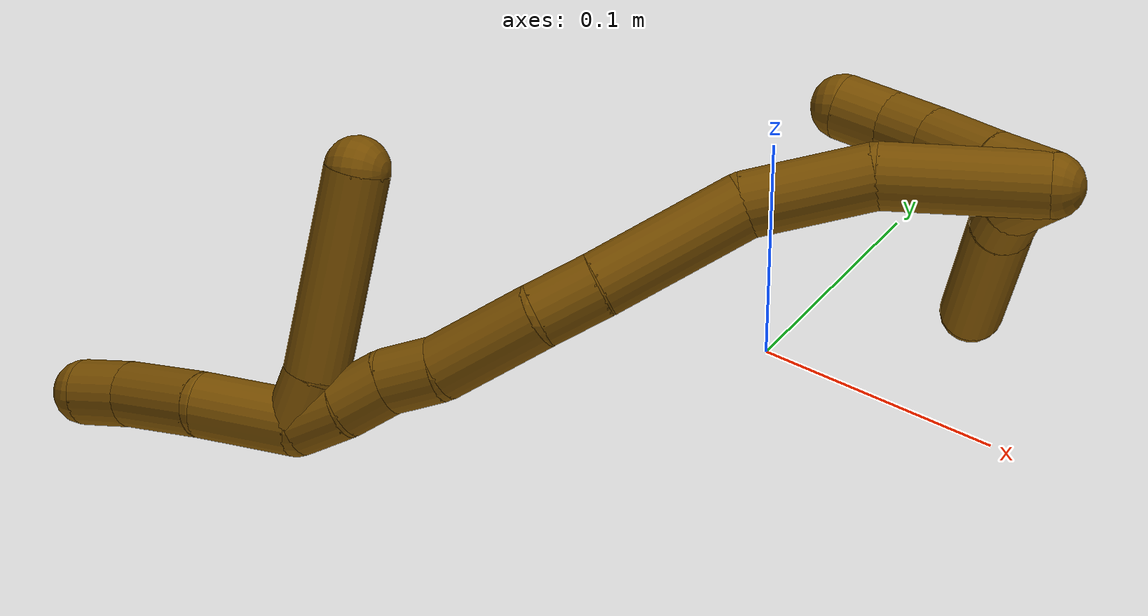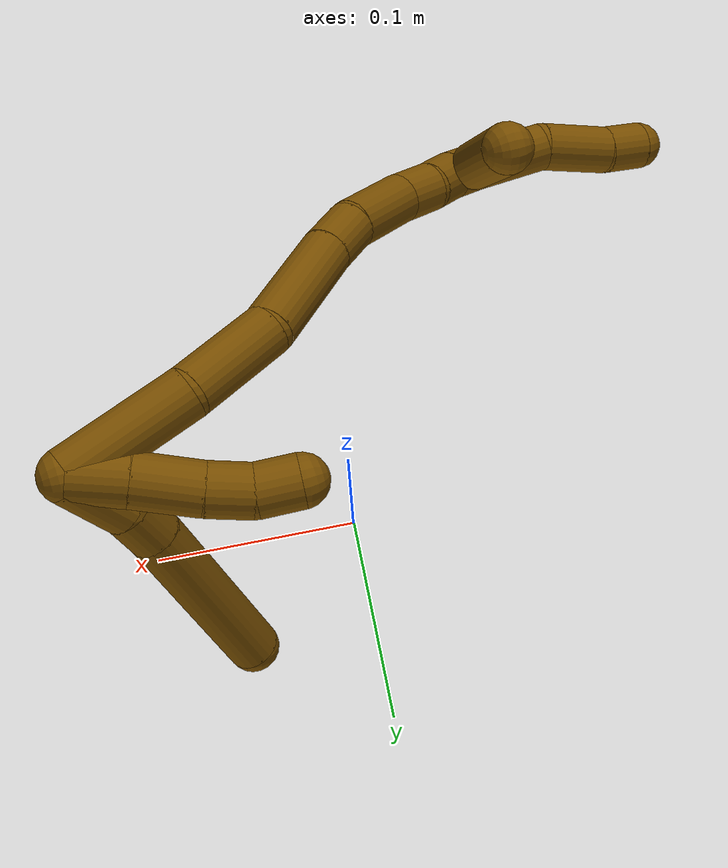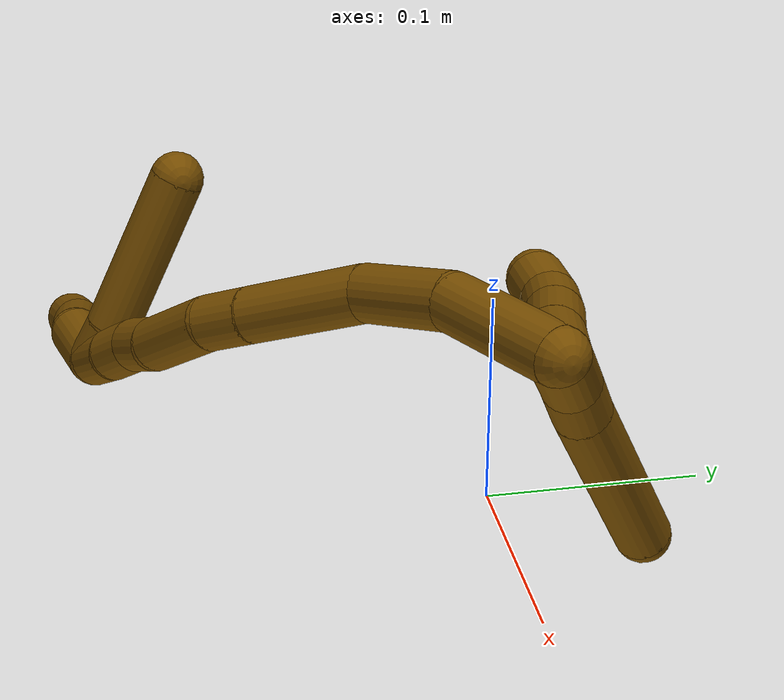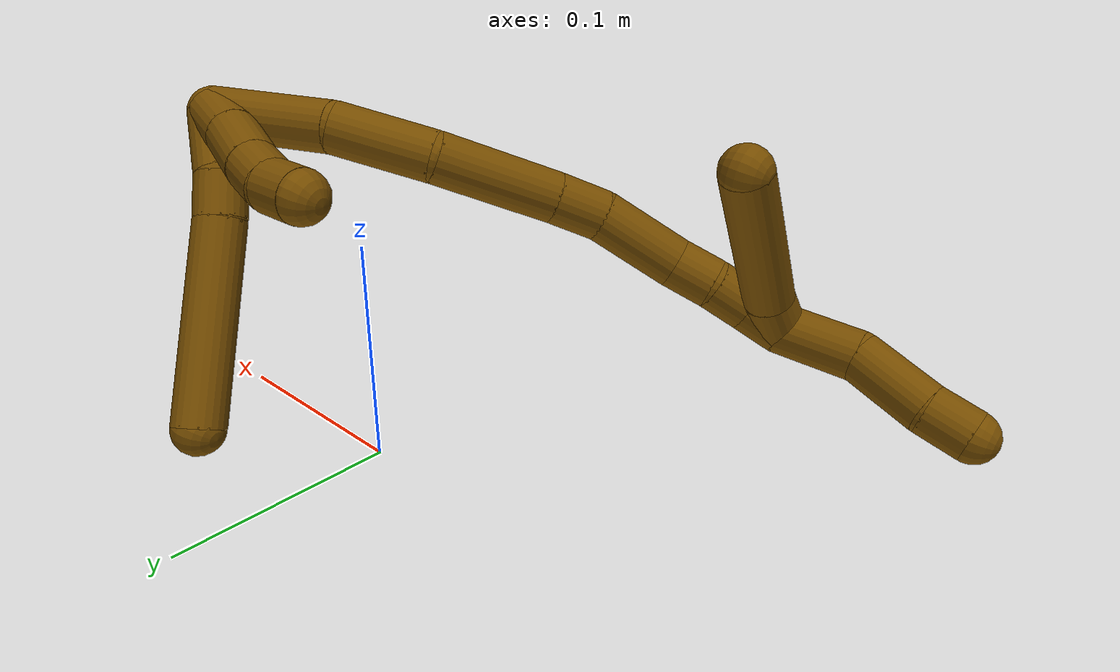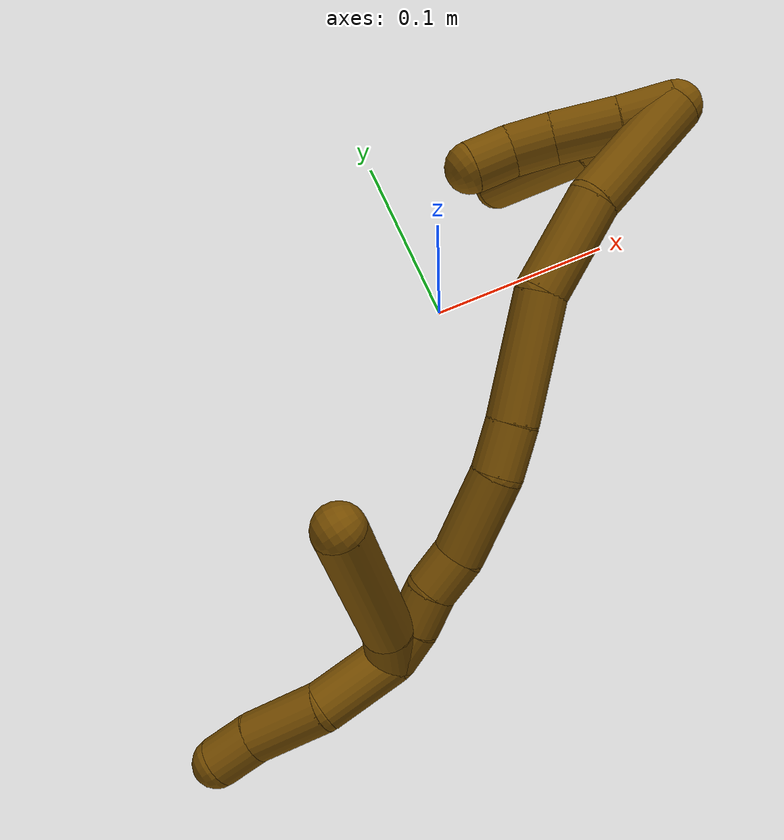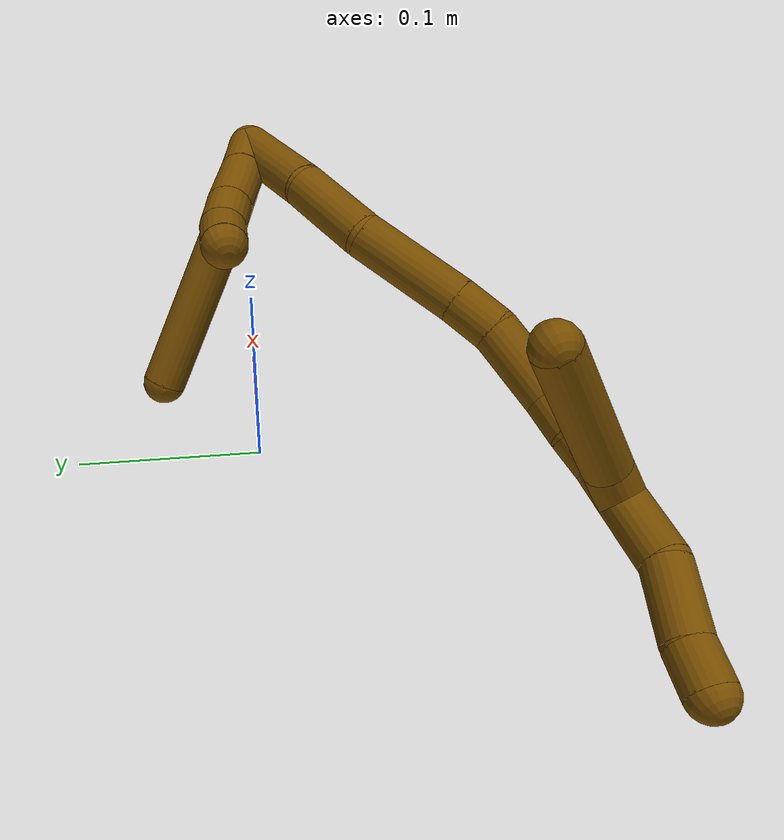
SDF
<sdf version="1.7">
 <world name="default">
  <model name="12">
   <static>0</static>
   <link name="12">
    <collision name="collision-cylinder-e_1_2_8">
     <pose>-0.011887 -0.003874 0.010864 0.342523 -0.80047 -0.146084</pose>
     <geometry><cylinder><radius>0.0125</radius><length>0.033125</length></cylinder></geometry>
     <surface>
      <friction><ode><mu>1.16</mu><mu2>1.16</mu2><slip1>0</slip1><slip2>0</slip2></ode></friction>
      <contact><ode><kp>1e+06</kp><kd>1</kd><max_vel>0</max_vel><min_depth>0.001</min_depth></ode></contact>
     </surface>
    </collision>
    <visual name="visual-cylinder-e_1_2_8">
     <pose>-0.011887 -0.003874 0.010864 0.342523 -0.80047 -0.146084</pose>
     <geometry><cylinder><radius>0.0125</radius><length>0.033125</length></cylinder></geometry>
     <material><ambient>0.466667 0.301961 0 1</ambient></material>
    </visual>
    <collision name="collision-cylinder-e_2_8_9">
     <pose>-0.032307 -0.011848 0.026556 0.704039 -0.93224 -0.365469</pose>
     <geometry><cylinder><radius>0.0125</radius><length>0.021255</length></cylinder></geometry>
     <surface>
      <friction><ode><mu>1.16</mu><mu2>1.16</mu2><slip1>0</slip1><slip2>0</slip2></ode></friction>
      <contact><ode><kp>1e+06</kp><kd>1</kd><max_vel>0</max_vel><min_depth>0.001</min_depth></ode></contact>
     </surface>
    </collision>
    <visual name="visual-cylinder-e_2_8_9">
     <pose>-0.032307 -0.011848 0.026556 0.704039 -0.93224 -0.365469</pose>
     <geometry><cylinder><radius>0.0125</radius><length>0.021255</length></cylinder></geometry>
     <material><ambient>0.466667 0.301961 0 1</ambient></material>
    </visual>
    <collision name="collision-cylinder-e_3_9_6">
     <pose>-0.081217 -0.033713 0.04982 0.766868 -1.00568 -0.436665</pose>
     <geometry><cylinder><radius>0.0125</radius><length>0.09562</length></cylinder></geometry>
     <surface>
      <friction><ode><mu>1.16</mu><mu2>1.16</mu2><slip1>0</slip1><slip2>0</slip2></ode></friction>
      <contact><ode><kp>1e+06</kp><kd>1</kd><max_vel>0</max_vel><min_depth>0.001</min_depth></ode></contact>
     </surface>
    </collision>
    <visual name="visual-cylinder-e_3_9_6">
     <pose>-0.081217 -0.033713 0.04982 0.766868 -1.00568 -0.436665</pose>
     <geometry><cylinder><radius>0.0125</radius><length>0.09562</length></cylinder></geometry>
     <material><ambient>0.466667 0.301961 0 1</ambient></material>
    </visual>
    <collision name="collision-cylinder-e_1_2_10">
     <pose>-0.004089 0.002525 0.012237 -0.203507 -0.316289 0.032564</pose>
     <geometry><cylinder><radius>0.0125</radius><length>0.026293</length></cylinder></geometry>
     <surface>
      <friction><ode><mu>1.16</mu><mu2>1.16</mu2><slip1>0</slip1><slip2>0</slip2></ode></friction>
      <contact><ode><kp>1e+06</kp><kd>1</kd><max_vel>0</max_vel><min_depth>0.001</min_depth></ode></contact>
     </surface>
    </collision>
    <visual name="visual-cylinder-e_1_2_10">
     <pose>-0.004089 0.002525 0.012237 -0.203507 -0.316289 0.032564</pose>
     <geometry><cylinder><radius>0.0125</radius><length>0.026293</length></cylinder></geometry>
     <material><ambient>0.466667 0.301961 0 1</ambient></material>
    </visual>
    <collision name="collision-cylinder-e_2_10_11">
     <pose>-0.014021 0.0083 0.03886 -0.222159 -0.377194 0.042571</pose>
     <geometry><cylinder><radius>0.0125</radius><length>0.031728</length></cylinder></geometry>
     <surface>
      <friction><ode><mu>1.16</mu><mu2>1.16</mu2><slip1>0</slip1><slip2>0</slip2></ode></friction>
      <contact><ode><kp>1e+06</kp><kd>1</kd><max_vel>0</max_vel><min_depth>0.001</min_depth></ode></contact>
     </surface>
    </collision>
    <visual name="visual-cylinder-e_2_10_11">
     <pose>-0.014021 0.0083 0.03886 -0.222159 -0.377194 0.042571</pose>
     <geometry><cylinder><radius>0.0125</radius><length>0.031728</length></cylinder></geometry>
     <material><ambient>0.466667 0.301961 0 1</ambient></material>
    </visual>
    <collision name="collision-cylinder-e_3_11_12">
     <pose>-0.022863 0.013677 0.06327 -0.20911 -0.28475 0.030082</pose>
     <geometry><cylinder><radius>0.0125</radius><length>0.021354</length></cylinder></geometry>
     <surface>
      <friction><ode><mu>1.16</mu><mu2>1.16</mu2><slip1>0</slip1><slip2>0</slip2></ode></friction>
      <contact><ode><kp>1e+06</kp><kd>1</kd><max_vel>0</max_vel><min_depth>0.001</min_depth></ode></contact>
     </surface>
    </collision>
    <visual name="visual-cylinder-e_3_11_12">
     <pose>-0.022863 0.013677 0.06327 -0.20911 -0.28475 0.030082</pose>
     <geometry><cylinder><radius>0.0125</radius><length>0.021354</length></cylinder></geometry>
     <material><ambient>0.466667 0.301961 0 1</ambient></material>
    </visual>
    <collision name="collision-cylinder-e_4_12_5">
     <pose>-0.025988 0.018062 0.083355 -0.220797 -0.012148 0.001347</pose>
     <geometry><cylinder><radius>0.0125</radius><length>0.020625</length></cylinder></geometry>
     <surface>
      <friction><ode><mu>1.16</mu><mu2>1.16</mu2><slip1>0</slip1><slip2>0</slip2></ode></friction>
      <contact><ode><kp>1e+06</kp><kd>1</kd><max_vel>0</max_vel><min_depth>0.001</min_depth></ode></contact>
     </surface>
    </collision>
    <visual name="visual-cylinder-e_4_12_5">
     <pose>-0.025988 0.018062 0.083355 -0.220797 -0.012148 0.001347</pose>
     <geometry><cylinder><radius>0.0125</radius><length>0.020625</length></cylinder></geometry>
     <material><ambient>0.466667 0.301961 0 1</ambient></material>
    </visual>
    <collision name="collision-cylinder-e_1_2_13">
     <pose>0.009673 -0.001933 0.029694 0.064992 0.314294 0.010302</pose>
     <geometry><cylinder><radius>0.0125</radius><length>0.062578</length></cylinder></geometry>
     <surface>
      <friction><ode><mu>1.16</mu><mu2>1.16</mu2><slip1>0</slip1><slip2>0</slip2></ode></friction>
      <contact><ode><kp>1e+06</kp><kd>1</kd><max_vel>0</max_vel><min_depth>0.001</min_depth></ode></contact>
     </surface>
    </collision>
    <visual name="visual-cylinder-e_1_2_13">
     <pose>0.009673 -0.001933 0.029694 0.064992 0.314294 0.010302</pose>
     <geometry><cylinder><radius>0.0125</radius><length>0.062578</length></cylinder></geometry>
     <material><ambient>0.466667 0.301961 0 1</ambient></material>
    </visual>
    <collision name="collision-cylinder-e_2_13_14">
     <pose>0.026363 -0.011812 0.0813 0.347902 0.292415 0.051743</pose>
     <geometry><cylinder><radius>0.0125</radius><length>0.048685</length></cylinder></geometry>
     <surface>
      <friction><ode><mu>1.16</mu><mu2>1.16</mu2><slip1>0</slip1><slip2>0</slip2></ode></friction>
      <contact><ode><kp>1e+06</kp><kd>1</kd><max_vel>0</max_vel><min_depth>0.001</min_depth></ode></contact>
     </surface>
    </collision>
    <visual name="visual-cylinder-e_2_13_14">
     <pose>0.026363 -0.011812 0.0813 0.347902 0.292415 0.051743</pose>
     <geometry><cylinder><radius>0.0125</radius><length>0.048685</length></cylinder></geometry>
     <material><ambient>0.466667 0.301961 0 1</ambient></material>
    </visual>
    <collision name="collision-cylinder-e_3_14_15">
     <pose>0.044284 -0.03707 0.125109 0.668984 0.372431 0.130769</pose>
     <geometry><cylinder><radius>0.0125</radius><length>0.059934</length></cylinder></geometry>
     <surface>
      <friction><ode><mu>1.16</mu><mu2>1.16</mu2><slip1>0</slip1><slip2>0</slip2></ode></friction>
      <contact><ode><kp>1e+06</kp><kd>1</kd><max_vel>0</max_vel><min_depth>0.001</min_depth></ode></contact>
     </surface>
    </collision>
    <visual name="visual-cylinder-e_3_14_15">
     <pose>0.044284 -0.03707 0.125109 0.668984 0.372431 0.130769</pose>
     <geometry><cylinder><radius>0.0125</radius><length>0.059934</length></cylinder></geometry>
     <material><ambient>0.466667 0.301961 0 1</ambient></material>
    </visual>
    <collision name="collision-cylinder-e_4_15_16">
     <pose>0.058982 -0.061222 0.156536 0.622539 0.312736 0.101357</pose>
     <geometry><cylinder><radius>0.0125</radius><length>0.02466</length></cylinder></geometry>
     <surface>
      <friction><ode><mu>1.16</mu><mu2>1.16</mu2><slip1>0</slip1><slip2>0</slip2></ode></friction>
      <contact><ode><kp>1e+06</kp><kd>1</kd><max_vel>0</max_vel><min_depth>0.001</min_depth></ode></contact>
     </surface>
    </collision>
    <visual name="visual-cylinder-e_4_15_16">
     <pose>0.058982 -0.061222 0.156536 0.622539 0.312736 0.101357</pose>
     <geometry><cylinder><radius>0.0125</radius><length>0.02466</length></cylinder></geometry>
     <material><ambient>0.466667 0.301961 0 1</ambient></material>
    </visual>
    <collision name="collision-cylinder-e_5_16_17">
     <pose>0.064629 -0.079965 0.183779 0.591666 0.086609 0.026411</pose>
     <geometry><cylinder><radius>0.0125</radius><length>0.042839</length></cylinder></geometry>
     <surface>
      <friction><ode><mu>1.16</mu><mu2>1.16</mu2><slip1>0</slip1><slip2>0</slip2></ode></friction>
      <contact><ode><kp>1e+06</kp><kd>1</kd><max_vel>0</max_vel><min_depth>0.001</min_depth></ode></contact>
     </surface>
    </collision>
    <visual name="visual-cylinder-e_5_16_17">
     <pose>0.064629 -0.079965 0.183779 0.591666 0.086609 0.026411</pose>
     <geometry><cylinder><radius>0.0125</radius><length>0.042839</length></cylinder></geometry>
     <material><ambient>0.466667 0.301961 0 1</ambient></material>
    </visual>
    <collision name="collision-cylinder-e_6_17_18">
     <pose>0.067038 -0.095499 0.21144 0.350057 0.052469 0.009281</pose>
     <geometry><cylinder><radius>0.0125</radius><length>0.021212</length></cylinder></geometry>
     <surface>
      <friction><ode><mu>1.16</mu><mu2>1.16</mu2><slip1>0</slip1><slip2>0</slip2></ode></friction>
      <contact><ode><kp>1e+06</kp><kd>1</kd><max_vel>0</max_vel><min_depth>0.001</min_depth></ode></contact>
     </surface>
    </collision>
    <visual name="visual-cylinder-e_6_17_18">
     <pose>0.067038 -0.095499 0.21144 0.350057 0.052469 0.009281</pose>
     <geometry><cylinder><radius>0.0125</radius><length>0.021212</length></cylinder></geometry>
     <material><ambient>0.466667 0.301961 0 1</ambient></material>
    </visual>
    <collision name="collision-cylinder-e_7_18_19">
     <pose>0.068401 -0.104705 0.229665 0.592744 0.080711 0.024658</pose>
     <geometry><cylinder><radius>0.0125</radius><length>0.020021</length></cylinder></geometry>
     <surface>
      <friction><ode><mu>1.16</mu><mu2>1.16</mu2><slip1>0</slip1><slip2>0</slip2></ode></friction>
      <contact><ode><kp>1e+06</kp><kd>1</kd><max_vel>0</max_vel><min_depth>0.001</min_depth></ode></contact>
     </surface>
    </collision>
    <visual name="visual-cylinder-e_7_18_19">
     <pose>0.068401 -0.104705 0.229665 0.592744 0.080711 0.024658</pose>
     <geometry><cylinder><radius>0.0125</radius><length>0.020021</length></cylinder></geometry>
     <material><ambient>0.466667 0.301961 0 1</ambient></material>
    </visual>
    <collision name="collision-cylinder-e_8_19_1">
     <pose>0.069329 -0.11471 0.246944 0.457304 0.012089 0.002813</pose>
     <geometry><cylinder><radius>0.0125</radius><length>0.02007</length></cylinder></geometry>
     <surface>
      <friction><ode><mu>1.16</mu><mu2>1.16</mu2><slip1>0</slip1><slip2>0</slip2></ode></friction>
      <contact><ode><kp>1e+06</kp><kd>1</kd><max_vel>0</max_vel><min_depth>0.001</min_depth></ode></contact>
     </surface>
    </collision>
    <visual name="visual-cylinder-e_8_19_1">
     <pose>0.069329 -0.11471 0.246944 0.457304 0.012089 0.002813</pose>
     <geometry><cylinder><radius>0.0125</radius><length>0.02007</length></cylinder></geometry>
     <material><ambient>0.466667 0.301961 0 1</ambient></material>
    </visual>
    <collision name="collision-cylinder-e_1_1_20">
     <pose>0.071077 -0.109518 0.252312 -1.93208 0.156795 -0.226358</pose>
     <geometry><cylinder><radius>0.0125</radius><length>0.020827</length></cylinder></geometry>
     <surface>
      <friction><ode><mu>1.16</mu><mu2>1.16</mu2><slip1>0</slip1><slip2>0</slip2></ode></friction>
      <contact><ode><kp>1e+06</kp><kd>1</kd><max_vel>0</max_vel><min_depth>0.001</min_depth></ode></contact>
     </surface>
    </collision>
    <visual name="visual-cylinder-e_1_1_20">
     <pose>0.071077 -0.109518 0.252312 -1.93208 0.156795 -0.226358</pose>
     <geometry><cylinder><radius>0.0125</radius><length>0.020827</length></cylinder></geometry>
     <material><ambient>0.466667 0.301961 0 1</ambient></material>
    </visual>
    <collision name="collision-cylinder-e_2_20_4">
     <pose>0.079153 -0.061501 0.241519 -1.75508 0.163657 -0.196784</pose>
     <geometry><cylinder><radius>0.0125</radius><length>0.079173</length></cylinder></geometry>
     <surface>
      <friction><ode><mu>1.16</mu><mu2>1.16</mu2><slip1>0</slip1><slip2>0</slip2></ode></friction>
      <contact><ode><kp>1e+06</kp><kd>1</kd><max_vel>0</max_vel><min_depth>0.001</min_depth></ode></contact>
     </surface>
    </collision>
    <visual name="visual-cylinder-e_2_20_4">
     <pose>0.079153 -0.061501 0.241519 -1.75508 0.163657 -0.196784</pose>
     <geometry><cylinder><radius>0.0125</radius><length>0.079173</length></cylinder></geometry>
     <material><ambient>0.466667 0.301961 0 1</ambient></material>
    </visual>
    <collision name="collision-cylinder-e_1_1_21">
     <pose>0.070548 -0.118284 0.275758 -0.043201 0.055301 -0.001195</pose>
     <geometry><cylinder><radius>0.0125</radius><length>0.039719</length></cylinder></geometry>
     <surface>
      <friction><ode><mu>1.16</mu><mu2>1.16</mu2><slip1>0</slip1><slip2>0</slip2></ode></friction>
      <contact><ode><kp>1e+06</kp><kd>1</kd><max_vel>0</max_vel><min_depth>0.001</min_depth></ode></contact>
     </surface>
    </collision>
    <visual name="visual-cylinder-e_1_1_21">
     <pose>0.070548 -0.118284 0.275758 -0.043201 0.055301 -0.001195</pose>
     <geometry><cylinder><radius>0.0125</radius><length>0.039719</length></cylinder></geometry>
     <material><ambient>0.466667 0.301961 0 1</ambient></material>
    </visual>
    <collision name="collision-cylinder-e_2_21_22">
     <pose>0.066637 -0.117824 0.314007 0.021521 -0.265207 -0.002871</pose>
     <geometry><cylinder><radius>0.0125</radius><length>0.038222</length></cylinder></geometry>
     <surface>
      <friction><ode><mu>1.16</mu><mu2>1.16</mu2><slip1>0</slip1><slip2>0</slip2></ode></friction>
      <contact><ode><kp>1e+06</kp><kd>1</kd><max_vel>0</max_vel><min_depth>0.001</min_depth></ode></contact>
     </surface>
    </collision>
    <visual name="visual-cylinder-e_2_21_22">
     <pose>0.066637 -0.117824 0.314007 0.021521 -0.265207 -0.002871</pose>
     <geometry><cylinder><radius>0.0125</radius><length>0.038222</length></cylinder></geometry>
     <material><ambient>0.466667 0.301961 0 1</ambient></material>
    </visual>
    <collision name="collision-cylinder-e_3_22_3">
     <pose>0.060433 -0.119203 0.343366 0.089682 -0.108582 -0.004877</pose>
     <geometry><cylinder><radius>0.0125</radius><length>0.022059</length></cylinder></geometry>
     <surface>
      <friction><ode><mu>1.16</mu><mu2>1.16</mu2><slip1>0</slip1><slip2>0</slip2></ode></friction>
      <contact><ode><kp>1e+06</kp><kd>1</kd><max_vel>0</max_vel><min_depth>0.001</min_depth></ode></contact>
     </surface>
    </collision>
    <visual name="visual-cylinder-e_3_22_3">
     <pose>0.060433 -0.119203 0.343366 0.089682 -0.108582 -0.004877</pose>
     <geometry><cylinder><radius>0.0125</radius><length>0.022059</length></cylinder></geometry>
     <material><ambient>0.466667 0.301961 0 1</ambient></material>
    </visual>
    <collision name="collision-sphere-3">
     <pose>0.059237 -0.120185 0.354287 0 -0 0</pose>
     <geometry><sphere><radius>0.0125</radius></sphere></geometry>
     <surface>
      <friction><ode><mu>1.16</mu><mu2>1.16</mu2><slip1>0</slip1><slip2>0</slip2></ode></friction>
      <contact><ode><kp>1e+06</kp><kd>1</kd><max_vel>0</max_vel><min_depth>0.001</min_depth></ode></contact>
     </surface>
    </collision>
    <visual name="visual-sphere-3">
     <pose>0.059237 -0.120185 0.354287 0 -0 0</pose>
     <geometry><sphere><radius>0.0125</radius></sphere></geometry>
     <material><ambient>0.466667 0.301961 0 1</ambient></material>
    </visual>
    <collision name="collision-sphere-22">
     <pose>0.061628 -0.118221 0.332446 0 -0 0</pose>
     <geometry><sphere><radius>0.0125</radius></sphere></geometry>
     <surface>
      <friction><ode><mu>1.16</mu><mu2>1.16</mu2><slip1>0</slip1><slip2>0</slip2></ode></friction>
      <contact><ode><kp>1e+06</kp><kd>1</kd><max_vel>0</max_vel><min_depth>0.001</min_depth></ode></contact>
     </surface>
    </collision>
    <visual name="visual-sphere-22">
     <pose>0.061628 -0.118221 0.332446 0 -0 0</pose>
     <geometry><sphere><radius>0.0125</radius></sphere></geometry>
     <material><ambient>0.466667 0.301961 0 1</ambient></material>
    </visual>
    <collision name="collision-sphere-21">
     <pose>0.071646 -0.117427 0.295569 0 -0 0</pose>
     <geometry><sphere><radius>0.0125</radius></sphere></geometry>
     <surface>
      <friction><ode><mu>1.16</mu><mu2>1.16</mu2><slip1>0</slip1><slip2>0</slip2></ode></friction>
      <contact><ode><kp>1e+06</kp><kd>1</kd><max_vel>0</max_vel><min_depth>0.001</min_depth></ode></contact>
     </surface>
    </collision>
    <visual name="visual-sphere-21">
     <pose>0.071646 -0.117427 0.295569 0 -0 0</pose>
     <geometry><sphere><radius>0.0125</radius></sphere></geometry>
     <material><ambient>0.466667 0.301961 0 1</ambient></material>
    </visual>
    <collision name="collision-sphere-4">
     <pose>0.085602 -0.023104 0.234362 0 -0 0</pose>
     <geometry><sphere><radius>0.0125</radius></sphere></geometry>
     <surface>
      <friction><ode><mu>1.16</mu><mu2>1.16</mu2><slip1>0</slip1><slip2>0</slip2></ode></friction>
      <contact><ode><kp>1e+06</kp><kd>1</kd><max_vel>0</max_vel><min_depth>0.001</min_depth></ode></contact>
     </surface>
    </collision>
    <visual name="visual-sphere-4">
     <pose>0.085602 -0.023104 0.234362 0 -0 0</pose>
     <geometry><sphere><radius>0.0125</radius></sphere></geometry>
     <material><ambient>0.466667 0.301961 0 1</ambient></material>
    </visual>
    <collision name="collision-sphere-20">
     <pose>0.072703 -0.099897 0.248676 0 -0 0</pose>
     <geometry><sphere><radius>0.0125</radius></sphere></geometry>
     <surface>
      <friction><ode><mu>1.16</mu><mu2>1.16</mu2><slip1>0</slip1><slip2>0</slip2></ode></friction>
      <contact><ode><kp>1e+06</kp><kd>1</kd><max_vel>0</max_vel><min_depth>0.001</min_depth></ode></contact>
     </surface>
    </collision>
    <visual name="visual-sphere-20">
     <pose>0.072703 -0.099897 0.248676 0 -0 0</pose>
     <geometry><sphere><radius>0.0125</radius></sphere></geometry>
     <material><ambient>0.466667 0.301961 0 1</ambient></material>
    </visual>
    <collision name="collision-sphere-11">
     <pose>-0.019864 0.01155 0.053246 0 -0 0</pose>
     <geometry><sphere><radius>0.0125</radius></sphere></geometry>
     <surface>
      <friction><ode><mu>1.16</mu><mu2>1.16</mu2><slip1>0</slip1><slip2>0</slip2></ode></friction>
      <contact><ode><kp>1e+06</kp><kd>1</kd><max_vel>0</max_vel><min_depth>0.001</min_depth></ode></contact>
     </surface>
    </collision>
    <visual name="visual-sphere-11">
     <pose>-0.019864 0.01155 0.053246 0 -0 0</pose>
     <geometry><sphere><radius>0.0125</radius></sphere></geometry>
     <material><ambient>0.466667 0.301961 0 1</ambient></material>
    </visual>
    <collision name="collision-sphere-10">
     <pose>-0.008178 0.00505 0.024473 0 -0 0</pose>
     <geometry><sphere><radius>0.0125</radius></sphere></geometry>
     <surface>
      <friction><ode><mu>1.16</mu><mu2>1.16</mu2><slip1>0</slip1><slip2>0</slip2></ode></friction>
      <contact><ode><kp>1e+06</kp><kd>1</kd><max_vel>0</max_vel><min_depth>0.001</min_depth></ode></contact>
     </surface>
    </collision>
    <visual name="visual-sphere-10">
     <pose>-0.008178 0.00505 0.024473 0 -0 0</pose>
     <geometry><sphere><radius>0.0125</radius></sphere></geometry>
     <material><ambient>0.466667 0.301961 0 1</ambient></material>
    </visual>
    <collision name="collision-sphere-6">
     <pose>-0.121594 -0.051479 0.068256 0 -0 0</pose>
     <geometry><sphere><radius>0.0125</radius></sphere></geometry>
     <surface>
      <friction><ode><mu>1.16</mu><mu2>1.16</mu2><slip1>0</slip1><slip2>0</slip2></ode></friction>
      <contact><ode><kp>1e+06</kp><kd>1</kd><max_vel>0</max_vel><min_depth>0.001</min_depth></ode></contact>
     </surface>
    </collision>
    <visual name="visual-sphere-6">
     <pose>-0.121594 -0.051479 0.068256 0 -0 0</pose>
     <geometry><sphere><radius>0.0125</radius></sphere></geometry>
     <material><ambient>0.466667 0.301961 0 1</ambient></material>
    </visual>
    <collision name="collision-sphere-9">
     <pose>-0.04084 -0.015948 0.031384 0 -0 0</pose>
     <geometry><sphere><radius>0.0125</radius></sphere></geometry>
     <surface>
      <friction><ode><mu>1.16</mu><mu2>1.16</mu2><slip1>0</slip1><slip2>0</slip2></ode></friction>
      <contact><ode><kp>1e+06</kp><kd>1</kd><max_vel>0</max_vel><min_depth>0.001</min_depth></ode></contact>
     </surface>
    </collision>
    <visual name="visual-sphere-9">
     <pose>-0.04084 -0.015948 0.031384 0 -0 0</pose>
     <geometry><sphere><radius>0.0125</radius></sphere></geometry>
     <material><ambient>0.466667 0.301961 0 1</ambient></material>
    </visual>
    <collision name="collision-sphere-2">
     <geometry><sphere><radius>0.0125</radius></sphere></geometry>
     <surface>
      <friction><ode><mu>1.16</mu><mu2>1.16</mu2><slip1>0</slip1><slip2>0</slip2></ode></friction>
      <contact><ode><kp>1e+06</kp><kd>1</kd><max_vel>0</max_vel><min_depth>0.001</min_depth></ode></contact>
     </surface>
    </collision>
    <visual name="visual-sphere-2">
     <geometry><sphere><radius>0.0125</radius></sphere></geometry>
     <material><ambient>0.466667 0.301961 0 1</ambient></material>
    </visual>
    <collision name="collision-sphere-19">
     <pose>0.069208 -0.110279 0.237941 0 -0 0</pose>
     <geometry><sphere><radius>0.0125</radius></sphere></geometry>
     <surface>
      <friction><ode><mu>1.16</mu><mu2>1.16</mu2><slip1>0</slip1><slip2>0</slip2></ode></friction>
      <contact><ode><kp>1e+06</kp><kd>1</kd><max_vel>0</max_vel><min_depth>0.001</min_depth></ode></contact>
     </surface>
    </collision>
    <visual name="visual-sphere-19">
     <pose>0.069208 -0.110279 0.237941 0 -0 0</pose>
     <geometry><sphere><radius>0.0125</radius></sphere></geometry>
     <material><ambient>0.466667 0.301961 0 1</ambient></material>
    </visual>
    <collision name="collision-sphere-8">
     <pose>-0.023773 -0.007747 0.021727 0 -0 0</pose>
     <geometry><sphere><radius>0.0125</radius></sphere></geometry>
     <surface>
      <friction><ode><mu>1.16</mu><mu2>1.16</mu2><slip1>0</slip1><slip2>0</slip2></ode></friction>
      <contact><ode><kp>1e+06</kp><kd>1</kd><max_vel>0</max_vel><min_depth>0.001</min_depth></ode></contact>
     </surface>
    </collision>
    <visual name="visual-sphere-8">
     <pose>-0.023773 -0.007747 0.021727 0 -0 0</pose>
     <geometry><sphere><radius>0.0125</radius></sphere></geometry>
     <material><ambient>0.466667 0.301961 0 1</ambient></material>
    </visual>
    <collision name="collision-sphere-12">
     <pose>-0.025863 0.015804 0.073294 0 -0 0</pose>
     <geometry><sphere><radius>0.0125</radius></sphere></geometry>
     <surface>
      <friction><ode><mu>1.16</mu><mu2>1.16</mu2><slip1>0</slip1><slip2>0</slip2></ode></friction>
      <contact><ode><kp>1e+06</kp><kd>1</kd><max_vel>0</max_vel><min_depth>0.001</min_depth></ode></contact>
     </surface>
    </collision>
    <visual name="visual-sphere-12">
     <pose>-0.025863 0.015804 0.073294 0 -0 0</pose>
     <geometry><sphere><radius>0.0125</radius></sphere></geometry>
     <material><ambient>0.466667 0.301961 0 1</ambient></material>
    </visual>
    <collision name="collision-sphere-5">
     <pose>-0.026113 0.020321 0.093416 0 -0 0</pose>
     <geometry><sphere><radius>0.0125</radius></sphere></geometry>
     <surface>
      <friction><ode><mu>1.16</mu><mu2>1.16</mu2><slip1>0</slip1><slip2>0</slip2></ode></friction>
      <contact><ode><kp>1e+06</kp><kd>1</kd><max_vel>0</max_vel><min_depth>0.001</min_depth></ode></contact>
     </surface>
    </collision>
    <visual name="visual-sphere-5">
     <pose>-0.026113 0.020321 0.093416 0 -0 0</pose>
     <geometry><sphere><radius>0.0125</radius></sphere></geometry>
     <material><ambient>0.466667 0.301961 0 1</ambient></material>
    </visual>
    <collision name="collision-sphere-13">
     <pose>0.019346 -0.003865 0.059387 0 -0 0</pose>
     <geometry><sphere><radius>0.0125</radius></sphere></geometry>
     <surface>
      <friction><ode><mu>1.16</mu><mu2>1.16</mu2><slip1>0</slip1><slip2>0</slip2></ode></friction>
      <contact><ode><kp>1e+06</kp><kd>1</kd><max_vel>0</max_vel><min_depth>0.001</min_depth></ode></contact>
     </surface>
    </collision>
    <visual name="visual-sphere-13">
     <pose>0.019346 -0.003865 0.059387 0 -0 0</pose>
     <geometry><sphere><radius>0.0125</radius></sphere></geometry>
     <material><ambient>0.466667 0.301961 0 1</ambient></material>
    </visual>
    <collision name="collision-sphere-14">
     <pose>0.03338 -0.019759 0.103213 0 -0 0</pose>
     <geometry><sphere><radius>0.0125</radius></sphere></geometry>
     <surface>
      <friction><ode><mu>1.16</mu><mu2>1.16</mu2><slip1>0</slip1><slip2>0</slip2></ode></friction>
      <contact><ode><kp>1e+06</kp><kd>1</kd><max_vel>0</max_vel><min_depth>0.001</min_depth></ode></contact>
     </surface>
    </collision>
    <visual name="visual-sphere-14">
     <pose>0.03338 -0.019759 0.103213 0 -0 0</pose>
     <geometry><sphere><radius>0.0125</radius></sphere></geometry>
     <material><ambient>0.466667 0.301961 0 1</ambient></material>
    </visual>
    <collision name="collision-sphere-15">
     <pose>0.055189 -0.054381 0.147005 0 -0 0</pose>
     <geometry><sphere><radius>0.0125</radius></sphere></geometry>
     <surface>
      <friction><ode><mu>1.16</mu><mu2>1.16</mu2><slip1>0</slip1><slip2>0</slip2></ode></friction>
      <contact><ode><kp>1e+06</kp><kd>1</kd><max_vel>0</max_vel><min_depth>0.001</min_depth></ode></contact>
     </surface>
    </collision>
    <visual name="visual-sphere-15">
     <pose>0.055189 -0.054381 0.147005 0 -0 0</pose>
     <geometry><sphere><radius>0.0125</radius></sphere></geometry>
     <material><ambient>0.466667 0.301961 0 1</ambient></material>
    </visual>
    <collision name="collision-sphere-16">
     <pose>0.062776 -0.068063 0.166067 0 -0 0</pose>
     <geometry><sphere><radius>0.0125</radius></sphere></geometry>
     <surface>
      <friction><ode><mu>1.16</mu><mu2>1.16</mu2><slip1>0</slip1><slip2>0</slip2></ode></friction>
      <contact><ode><kp>1e+06</kp><kd>1</kd><max_vel>0</max_vel><min_depth>0.001</min_depth></ode></contact>
     </surface>
    </collision>
    <visual name="visual-sphere-16">
     <pose>0.062776 -0.068063 0.166067 0 -0 0</pose>
     <geometry><sphere><radius>0.0125</radius></sphere></geometry>
     <material><ambient>0.466667 0.301961 0 1</ambient></material>
    </visual>
    <collision name="collision-sphere-17">
     <pose>0.066481 -0.091866 0.201491 0 -0 0</pose>
     <geometry><sphere><radius>0.0125</radius></sphere></geometry>
     <surface>
      <friction><ode><mu>1.16</mu><mu2>1.16</mu2><slip1>0</slip1><slip2>0</slip2></ode></friction>
      <contact><ode><kp>1e+06</kp><kd>1</kd><max_vel>0</max_vel><min_depth>0.001</min_depth></ode></contact>
     </surface>
    </collision>
    <visual name="visual-sphere-17">
     <pose>0.066481 -0.091866 0.201491 0 -0 0</pose>
     <geometry><sphere><radius>0.0125</radius></sphere></geometry>
     <material><ambient>0.466667 0.301961 0 1</ambient></material>
    </visual>
    <collision name="collision-sphere-18">
     <pose>0.067594 -0.099131 0.22139 0 -0 0</pose>
     <geometry><sphere><radius>0.0125</radius></sphere></geometry>
     <surface>
      <friction><ode><mu>1.16</mu><mu2>1.16</mu2><slip1>0</slip1><slip2>0</slip2></ode></friction>
      <contact><ode><kp>1e+06</kp><kd>1</kd><max_vel>0</max_vel><min_depth>0.001</min_depth></ode></contact>
     </surface>
    </collision>
    <visual name="visual-sphere-18">
     <pose>0.067594 -0.099131 0.22139 0 -0 0</pose>
     <geometry><sphere><radius>0.0125</radius></sphere></geometry>
     <material><ambient>0.466667 0.301961 0 1</ambient></material>
    </visual>
    <collision name="collision-sphere-1">
     <pose>0.069451 -0.11914 0.255947 0 -0 0</pose>
     <geometry><sphere><radius>0.0125</radius></sphere></geometry>
     <surface>
      <friction><ode><mu>1.16</mu><mu2>1.16</mu2><slip1>0</slip1><slip2>0</slip2></ode></friction>
      <contact><ode><kp>1e+06</kp><kd>1</kd><max_vel>0</max_vel><min_depth>0.001</min_depth></ode></contact>
     </surface>
    </collision>
    <visual name="visual-sphere-1">
     <pose>0.069451 -0.11914 0.255947 0 -0 0</pose>
     <geometry><sphere><radius>0.0125</radius></sphere></geometry>
     <material><ambient>0.466667 0.301961 0 1</ambient></material>
    </visual>
    <inertial>
     <pose>0.022607 -0.047824 0.139075 0 -0 0</pose>
     <mass>0.75</mass>
     <inertia>
      <ixx>0.000147</ixx>
      <ixy>0</ixy>
      <ixz>0</ixz>
      <iyy>0.000127</iyy>
      <iyz>0</iyz>
      <izz>9.3e-05</izz>
     </inertia>
    </inertial>
   </link>
   <pose>0.118598 -0.004908 0.134519 1.78386 -0.614604 -1.52556</pose>
  </model>
 </world>
</sdf>
